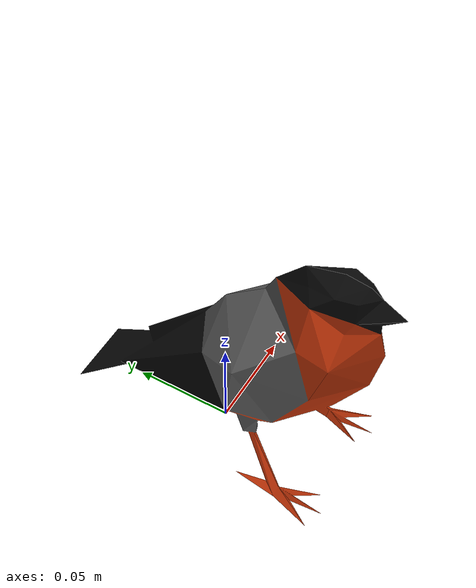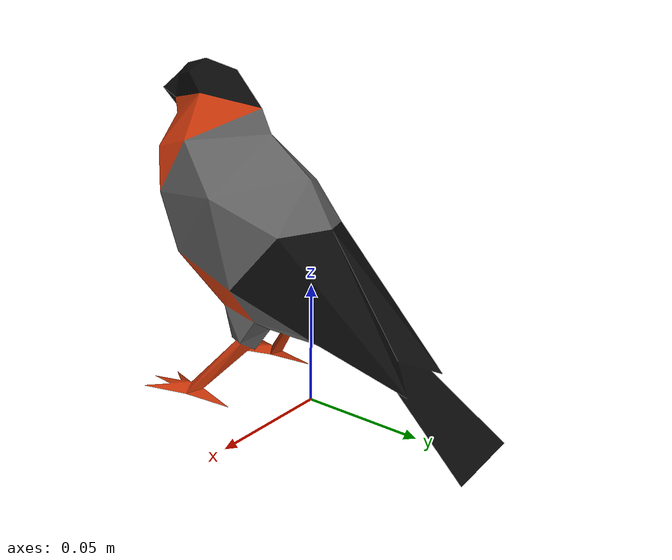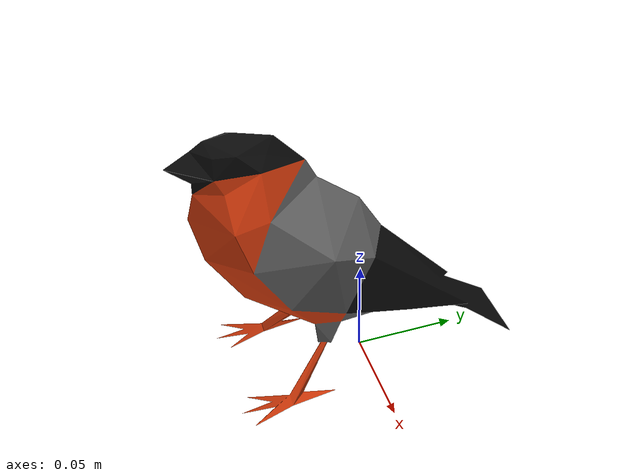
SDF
<?xml version="1.0" ?>
<sdf version="1.6">
  <model name="bird_combined">
    <static>false</static>
    <pose>0 0 0 0 0 0</pose>

    <link name="body">
      <gravity>false</gravity>
      <kinematic>true</kinematic>

      <inertial>
        <mass>0.3</mass>
        <inertia>
          <ixx>0.05</ixx>
          <iyy>0.05</iyy>
          <izz>0.05</izz>
        </inertia>
      </inertial>

      <collision name="collision">
        <geometry>
          <box>
            <size>1 1 1</size>
          </box>
        </geometry>
      </collision>

      <visual name="visual">
        <geometry>
          <mesh>
            <uri>model://bird/meshes/bird.dae</uri>
            <scale>1 1 1</scale>
          </mesh>
        </geometry>
      </visual>

    </link>
  </model>
</sdf>
